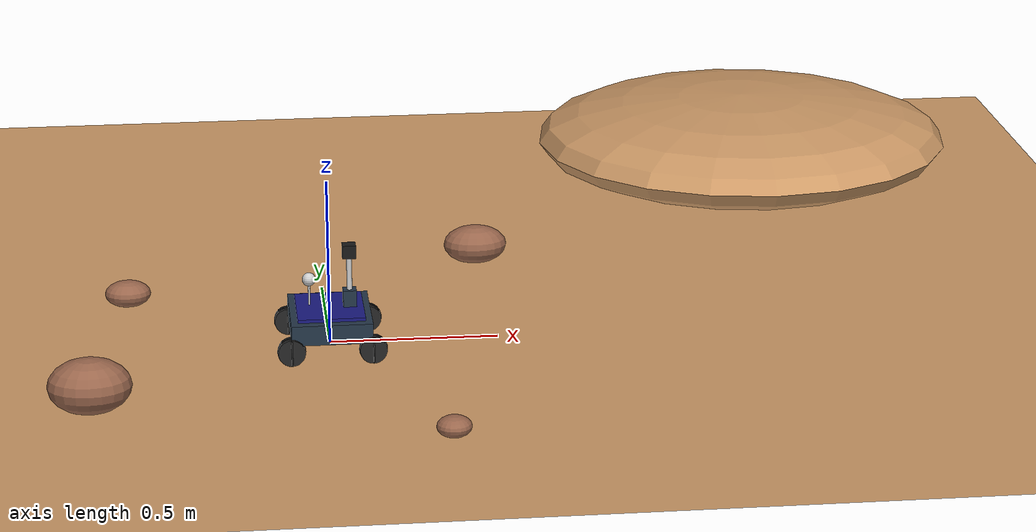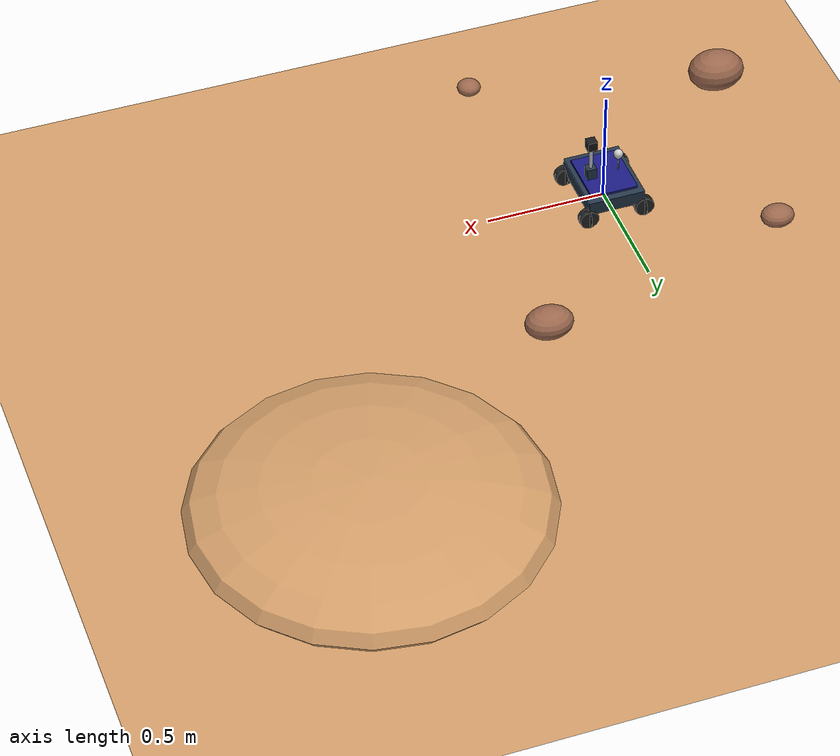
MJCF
<mujoco model="rover scene">
  <compiler angle="radian"/>
  <option timestep="0.000025"/>

  <include file="robot-02.xml"/>

  <statistic center="0 0 0.1" extent="1.5"/>

  <visual>
    <headlight diffuse="0.8 0.8 0.8" ambient="0.3 0.3 0.3" specular="0.1 0.1 0.1"/>
    <rgba haze="0.15 0.25 0.35 1"/>
    <global azimuth="120" elevation="-20"/>
  </visual>

  <asset>
    <texture type="skybox" builtin="gradient" rgb1="0.3 0.5 0.7" rgb2="0 0 0" width="512" height="3072"/>

    <!-- Mars-like terrain texture -->
    <texture type="2d" name="groundplane" builtin="flat" mark="edge" rgb1="0.8 0.6 0.4" rgb2="0.6 0.4 0.2"
      markrgb="0.8 0.6 0.4" width="300" height="300"/>
    <material name="groundplane" texture="groundplane" texuniform="true" texrepeat="5 5" reflectance="0.05"/>

    <!-- Mars-like rocky texture for obstacles -->
    <texture type="2d" name="rock_texture" builtin="flat" mark="edge" rgb1="0.6 0.4 0.3" rgb2="0.4 0.3 0.2"
      markrgb="0.6 0.4 0.3" width="300" height="300"/>
    <material name="rock_material" texture="rock_texture" texuniform="true" texrepeat="2 2"/>

    <!-- Wheel texture -->
    <texture type="2d" name="wheel_texture" builtin="checker" mark="edge" rgb1="0.1 0.1 0.1" rgb2="0.2 0.2 0.2"
      markrgb="0.3 0.3 0.3" width="300" height="300"/>
    <material name="wheel_material" texture="wheel_texture" texuniform="true" texrepeat="8 8"/>
  </asset>

  <worldbody>
    <light pos="0 0 1.5" dir="-0.5 -0.5 -1" directional="true"/>
    <light pos="1 1 1.5" dir="-0.5 -0.5 -1" directional="true" diffuse="0.4 0.4 0.4"/>

    <!-- Mars-like terrain with slight elevation -->
    <geom name="floor" size="5 5 0.05" pos="0 0 -0.05" type="plane" material="groundplane"/>

    <!-- Add some small rocks/obstacles - adjusted to sit directly on ground -->
    <!-- Set z position to half the z-size to place bottom on the ground (z=0) -->
    <geom name="rock1" size="0.1 0.08 0.06" pos="0.5 0.7 0.06" type="ellipsoid" material="rock_material"/>
    <geom name="rock2" size="0.07 0.06 0.04" pos="-0.6 0.4 0.04" type="ellipsoid" material="rock_material"/>
    <geom name="rock3" size="0.05 0.05 0.03" pos="0.3 -0.8 0.03" type="ellipsoid" material="rock_material"/>
    <geom name="rock4" size="0.12 0.1 0.08" pos="-0.7 -0.5 0.08" type="ellipsoid" material="rock_material"/>

    <!-- Small gentle hill - adjusted z position -->
    <geom name="hill" size="0.7 0.7 0.15" pos="1.5 1.5 0.15" type="ellipsoid" material="groundplane"/>
  </worldbody>

  <contact>
    <pair geom1="floor" geom2="fl_wheel_geom" friction="0.4 0.4 0.07 0.001 0.001"/>
    <pair geom1="floor" geom2="fr_wheel_geom" friction="0.4 0.4 0.07 0.001 0.001"/>
    <pair geom1="floor" geom2="rl_wheel_geom" friction="0.4 0.4 0.07 0.001 0.001"/>
    <pair geom1="floor" geom2="rr_wheel_geom" friction="0.4 0.4 0.07 0.001 0.001"/>

    <!-- Add contact pairs for wheel-rock interactions -->
    <pair geom1="rock1" geom2="fl_wheel_geom" friction="0.5 0.5 0.1 0.001 0.001"/>
    <pair geom1="rock1" geom2="fr_wheel_geom" friction="0.5 0.5 0.1 0.001 0.001"/>
    <pair geom1="rock1" geom2="rl_wheel_geom" friction="0.5 0.5 0.1 0.001 0.001"/>
    <pair geom1="rock1" geom2="rr_wheel_geom" friction="0.5 0.5 0.1 0.001 0.001"/>

    <!-- Repeat for other rocks -->
    <pair geom1="rock2" geom2="fl_wheel_geom" friction="0.5 0.5 0.1 0.001 0.001"/>
    <pair geom1="rock2" geom2="fr_wheel_geom" friction="0.5 0.5 0.1 0.001 0.001"/>
    <pair geom1="rock2" geom2="rl_wheel_geom" friction="0.5 0.5 0.1 0.001 0.001"/>
    <pair geom1="rock2" geom2="rr_wheel_geom" friction="0.5 0.5 0.1 0.001 0.001"/>

    <pair geom1="rock3" geom2="fl_wheel_geom" friction="0.5 0.5 0.1 0.001 0.001"/>
    <pair geom1="rock3" geom2="fr_wheel_geom" friction="0.5 0.5 0.1 0.001 0.001"/>
    <pair geom1="rock3" geom2="rl_wheel_geom" friction="0.5 0.5 0.1 0.001 0.001"/>
    <pair geom1="rock3" geom2="rr_wheel_geom" friction="0.5 0.5 0.1 0.001 0.001"/>

    <pair geom1="rock4" geom2="fl_wheel_geom" friction="0.5 0.5 0.1 0.001 0.001"/>
    <pair geom1="rock4" geom2="fr_wheel_geom" friction="0.5 0.5 0.1 0.001 0.001"/>
    <pair geom1="rock4" geom2="rl_wheel_geom" friction="0.5 0.5 0.1 0.001 0.001"/>
    <pair geom1="rock4" geom2="rr_wheel_geom" friction="0.5 0.5 0.1 0.001 0.001"/>

    <!-- Hill contact -->
    <pair geom1="hill" geom2="fl_wheel_geom" friction="0.4 0.4 0.07 0.001 0.001"/>
    <pair geom1="hill" geom2="fr_wheel_geom" friction="0.4 0.4 0.07 0.001 0.001"/>
    <pair geom1="hill" geom2="rl_wheel_geom" friction="0.4 0.4 0.07 0.001 0.001"/>
    <pair geom1="hill" geom2="rr_wheel_geom" friction="0.4 0.4 0.07 0.001 0.001"/>
  </contact>
</mujoco>

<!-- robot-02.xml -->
<mujoco model="rover">
  <compiler angle="radian"/>

  <asset>
    <texture type="2d" name="rover_body_texture" builtin="flat" rgb1="0.2 0.3 0.4" rgb2="0.1 0.2 0.3" width="300" height="300"/>
    <material name="rover_body_material" texture="rover_body_texture" texuniform="true" reflectance="0.1" rgba="0.7 0.7 0.7 1"/>
    <material name="suspension_material" rgba="0.4 0.4 0.4 1"/>
    <material name="solar_panel_material" rgba="0.1 0.1 0.5 1" reflectance="0.7"/>
    <material name="antenna_material" rgba="0.8 0.8 0.8 1"/>
    <material name="camera_material" rgba="0.1 0.1 0.1 1"/>
  </asset>

  <worldbody>
    <body name="robot_body">
      <joint name="robot_body_joint" type="free"/>

      <!-- Main rover body -->
      <geom name="body_main" size="0.12 0.15 0.03" pos="0 0 0.075" type="box" material="rover_body_material"/>

      <!-- Rover deck/solar panel -->
      <geom name="solar_panel" size="0.1 0.12 0.005" pos="0 0 0.11" type="box" material="solar_panel_material"/>

      <!-- Equipment/sensor mast -->
      <geom name="mast_base" size="0.02 0.02 0.04" pos="0.06 0 0.125" type="box" material="rover_body_material"/>
      <geom name="mast" size="0.008 0.06" pos="0.06 0 0.225" type="cylinder" material="antenna_material"/>

      <!-- Camera -->
      <geom name="camera" size="0.02 0.02 0.02" pos="0.06 0 0.285" type="box" material="camera_material"/>

      <!-- Antenna -->
      <geom name="antenna" size="0.003 0.04" pos="-0.06 0 0.16" type="cylinder" material="antenna_material"/>
      <geom name="antenna_dish" size="0.02" pos="-0.06 0 0.2" type="sphere" material="antenna_material"/>

      <!-- Inertial properties -->
      <inertial pos="0 0 0.08" mass="2.0" diaginertia="0.015 0.02 0.025"/>

      <!-- Front left wheel with suspension -->
      <body name="fl_suspension" pos="-0.12 0.14 0.045">
        <joint name="fl_suspension_joint" type="slide" pos="0 0 0" axis="0 0 1" range="-0.02 0.02" damping="10"/>
        <geom name="fl_suspension_spring" size="0.01 0.02" type="cylinder" material="suspension_material"/>
        <body name="fl_wheel" pos="0 0 -0.02">
          <inertial pos="0 0 0" mass="0.08" diaginertia="5.0e-05 3.0e-05 3.0e-05"/>
          <joint name="fl_wheel_joint" type="hinge" pos="0 0 0" axis="0 1 0" actuatorfrcrange="-5 5" damping="0.1"/>
          <geom name="fl_wheel_geom" size="0.04 0.018" quat="0.707107 0.707107 0 0" type="cylinder" material="wheel_material"/>
          <!-- Wheel treads for more detail -->
          <geom name="fl_wheel_tread1" size="0.042 0.002" quat="0.707107 0.707107 0 0" pos="0 0 0" type="cylinder" rgba="0.15 0.15 0.15 1"/>
          <geom name="fl_wheel_tread2" size="0.042 0.002" quat="0.707107 0 0.707107 0" pos="0 0 0" type="cylinder" rgba="0.15 0.15 0.15 1"/>
        </body>
      </body>

      <!-- Front right wheel with suspension -->
      <body name="fr_suspension" pos="0.12 0.14 0.045">
        <joint name="fr_suspension_joint" type="slide" pos="0 0 0" axis="0 0 1" range="-0.02 0.02" damping="10"/>
        <geom name="fr_suspension_spring" size="0.01 0.02" type="cylinder" material="suspension_material"/>
        <body name="fr_wheel" pos="0 0 -0.02">
          <inertial pos="0 0 0" mass="0.08" diaginertia="5.0e-05 3.0e-05 3.0e-05"/>
          <joint name="fr_wheel_joint" type="hinge" pos="0 0 0" axis="0 1 0" actuatorfrcrange="-5 5" damping="0.1"/>
          <geom name="fr_wheel_geom" size="0.04 0.018" quat="0.707107 0.707107 0 0" type="cylinder" material="wheel_material"/>
          <!-- Wheel treads for more detail -->
          <geom name="fr_wheel_tread1" size="0.042 0.002" quat="0.707107 0.707107 0 0" pos="0 0 0" type="cylinder" rgba="0.15 0.15 0.15 1"/>
          <geom name="fr_wheel_tread2" size="0.042 0.002" quat="0.707107 0 0.707107 0" pos="0 0 0" type="cylinder" rgba="0.15 0.15 0.15 1"/>
        </body>
      </body>

      <!-- Rear left wheel with suspension -->
      <body name="rl_suspension" pos="-0.12 -0.14 0.045">
        <joint name="rl_suspension_joint" type="slide" pos="0 0 0" axis="0 0 1" range="-0.02 0.02" damping="10"/>
        <geom name="rl_suspension_spring" size="0.01 0.02" type="cylinder" material="suspension_material"/>
        <body name="rl_wheel" pos="0 0 -0.02">
          <inertial pos="0 0 0" mass="0.08" diaginertia="5.0e-05 3.0e-05 3.0e-05"/>
          <joint name="rl_wheel_joint" type="hinge" pos="0 0 0" axis="0 1 0" actuatorfrcrange="-5 5" damping="0.1"/>
          <geom name="rl_wheel_geom" size="0.04 0.018" quat="0.707107 0.707107 0 0" type="cylinder" material="wheel_material"/>
          <!-- Wheel treads for more detail -->
          <geom name="rl_wheel_tread1" size="0.042 0.002" quat="0.707107 0.707107 0 0" pos="0 0 0" type="cylinder" rgba="0.15 0.15 0.15 1"/>
          <geom name="rl_wheel_tread2" size="0.042 0.002" quat="0.707107 0 0.707107 0" pos="0 0 0" type="cylinder" rgba="0.15 0.15 0.15 1"/>
        </body>
      </body>

      <!-- Rear right wheel with suspension -->
      <body name="rr_suspension" pos="0.12 -0.14 0.045">
        <joint name="rr_suspension_joint" type="slide" pos="0 0 0" axis="0 0 1" range="-0.02 0.02" damping="10"/>
        <geom name="rr_suspension_spring" size="0.01 0.02" type="cylinder" material="suspension_material"/>
        <body name="rr_wheel" pos="0 0 -0.02">
          <inertial pos="0 0 0" mass="0.08" diaginertia="5.0e-05 3.0e-05 3.0e-05"/>
          <joint name="rr_wheel_joint" type="hinge" pos="0 0 0" axis="0 1 0" actuatorfrcrange="-5 5" damping="0.1"/>
          <geom name="rr_wheel_geom" size="0.04 0.018" quat="0.707107 0.707107 0 0" type="cylinder" material="wheel_material"/>
          <!-- Wheel treads for more detail -->
          <geom name="rr_wheel_tread1" size="0.042 0.002" quat="0.707107 0.707107 0 0" pos="0 0 0" type="cylinder" rgba="0.15 0.15 0.15 1"/>
          <geom name="rr_wheel_tread2" size="0.042 0.002" quat="0.707107 0 0.707107 0" pos="0 0 0" type="cylinder" rgba="0.15 0.15 0.15 1"/>
        </body>
      </body>
    </body>
  </worldbody>

  <actuator>
    <velocity name="motor_fl_wheel" joint="fl_wheel_joint" gear="1" kv="0.9"/>
    <velocity name="motor_fr_wheel" joint="fr_wheel_joint" gear="1" kv="0.9"/>
    <velocity name="motor_rl_wheel" joint="rl_wheel_joint" gear="1" kv="0.9"/>
    <velocity name="motor_rr_wheel" joint="rr_wheel_joint" gear="1" kv="0.9"/>
  </actuator>
</mujoco>
